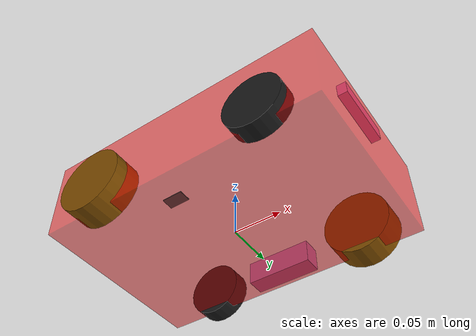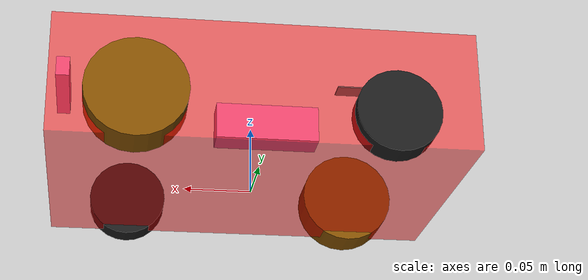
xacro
<?xml version="1.0"?>

<robot name="wombot" xmlns:xacro="http://ros.org/wiki/xacro">

  <xacro:arg name="robot_namespace" default="/" />

  <!-- Included URDF/XACRO Files -->
  <xacro:include filename="$(find perception_playground)/urdf/wheel.urdf.xacro" />
  <xacro:include filename="$(find perception_playground)/urdf/camera.urdf.xacro" />

  <material name="orange">
					<color rgba="0.5 0.3 0.0 1"/>
	</material>

  <material name="black">
					<color rgba="0.1 0.1 0.1 1"/>
	</material>

  <xacro:property name="M_PI" value="3.14159"/>

  <!-- Base Size -->
  <!-- TODO: Insert real values -->
  <xacro:property name="base_x_size" value="0.300" />
  <xacro:property name="base_y_size" value="0.200" />
  <xacro:property name="base_z_size" value="0.0889" />
  <xacro:property name="wall_thickness" value="0.002" />

  <!-- IMU -->
  <xacro:property name="imu_x_offset"	value="0.08" />

  <!-- Wheel Mounting Positions -->
  <!-- TODO: Insert real values -->
  <xacro:property name="wheelbase"		value="0.2159" />
  <xacro:property name="track"			value="0.196825" />
  <xacro:property name="caster_track"			value="0.196825" />
  <xacro:property name="ground_clearance"	value="0.00635" />
  <xacro:property name="front_axle_x_offset"	value="0.09" />
    <xacro:property name="rear_axle_x_offset"	value="-0.09" />

  <!-- Wheel Properties -->
  <xacro:property name="drive_wheel_length" value="0.03" />
  <xacro:property name="drive_wheel_radius" value="0.036" />
  <xacro:property name="caster_wheel_length" value="0.02" />
  <xacro:property name="caster_wheel_radius" value="0.03" />

  <!-- Camera Properties -->
  <xacro:property name="rs_camera_thickness" value="0.02" />
  <xacro:property name="rs_camera_width" value="0.07" />
  <xacro:property name="rs_camera_height" value="0.025" />
  <xacro:property name="rs_camera_x_offset" value="0.00" />
  <xacro:property name="rs_camera_y_offset" value="${base_y_size/2 - wall_thickness- rs_camera_thickness/2}" />
  <xacro:property name="rs_camera_z_offset" value="${wall_thickness + rs_camera_height/2}" />

  <!-- Camera Properties -->
  <xacro:property name="usb_camera_thickness" value="0.01" />
  <xacro:property name="usb_camera_width" value="0.07" />
  <xacro:property name="usb_camera_height" value="0.015" />
  <xacro:property name="usb_camera_x_offset" value="${base_x_size/2 - wall_thickness - usb_camera_thickness/2}" />
  <xacro:property name="usb_camera_y_offset" value="${base_y_size/2 - usb_camera_thickness}" />
  <xacro:property name="usb_camera_z_offset" value="${base_z_size - wall_thickness - usb_camera_height/2}" />

  <!-- Base link is the center of the robot's bottom surface -->
  <link name="base_link">
    <visual>
      <!-- This defines where the center of the visual element should be, relative to its origin.  -->
      <origin xyz="0 0 ${base_z_size/2}" rpy="0 0 0" />
      <geometry>
        <box size="${ base_x_size } ${base_y_size} ${base_z_size}"/>
        <!-- This is where the true mesh files will be invoked, when ready. -->
      </geometry>
      <material name="color1">
        <color rgba="1 0 0 .5"/>
      </material>
    </visual>
    <collision>
      <origin xyz="0 0 ${base_z_size/2}" rpy="0 0 0" />
      <geometry>
        <box size="${ base_x_size + 0.01 } ${base_y_size + 0.01} ${base_z_size + 0.01}"/>
      </geometry>
    </collision>
  </link>

  <!-- Base footprint is on the ground under the robot -->
  <link name="base_footprint"/>

  <joint name="base_footprint_joint" type="fixed">
    <origin xyz="0 0 ${-ground_clearance}" rpy="0 0 0" />
    <parent link="base_link" />
    <child link="base_footprint" />
  </joint>

  <link name="floor"/>

  <joint name="floor_joint" type="fixed">
  <!-- intrinsic meaning it rotates about whatever the nex axes direction is -->
    <origin xyz="0 0 -0.02085" rpy="0 0 0" />
    <parent link="left_camera_link" />
    <child link="floor" />
  </joint>

  <!-- Inertial link stores the robot's inertial information -->
  <link name="inertial_link">
    <inertial>
      <mass value="46.034" />
      <origin xyz="-0.00065 -0.085 0.062" />
      <inertia ixx="0.6022" ixy="-0.02364" ixz="-0.1197" iyy="1.7386" iyz="-0.001544" izz="2.0296" />
    </inertial>
  </link>

  <joint name="inertial_joint" type="fixed">
    <origin xyz="0 0 0" rpy="0 0 0" />
    <parent link="base_link" />
    <child link="inertial_link" />
  </joint>

  <!-- IMU Link is the standard mounting position for the navigation board.-->
  <!-- TODO: Put in real imu position -->
  <link name="alt_imu_10_link">
    <inertial>
      <mass value="2" />
      <origin xyz="0 0 0" />
      <inertia ixx="0.0" ixy="0" ixz="0" iyy="0" iyz="0" izz="0" />
    </inertial>
    <visual>
      <geometry>
        <box size="0.025 0.015 0.001"/>
      </geometry>
      <material name="color2">
        <color rgba="0 0.5 0.5 1"/>
      </material>
		</visual>
  </link>

  <joint name="alt_imu_10_joint" type="fixed">
    <origin xyz="${-imu_x_offset} 0 ${base_z_size - wall_thickness}" rpy="0 0 0" />
    <parent link="base_link" />
    <child link="alt_imu_10_link" />
  </joint>

  <!-- Drive Wheels -->
  <xacro:wombot_wheel wheel_prefix="left_drive" wheel_radius="${drive_wheel_radius}" wheel_length="${drive_wheel_length}" color="orange">
    <origin xyz="${front_axle_x_offset} ${track/2} ${-ground_clearance + drive_wheel_radius}" rpy="0 0 0" />
  </xacro:wombot_wheel>

  <xacro:wombot_wheel wheel_prefix="right_drive" wheel_radius="${drive_wheel_radius}" wheel_length="${drive_wheel_length}" color="orange">
    <!-- this is for the joint tag inside the included .xml -->
    <origin xyz="${rear_axle_x_offset} ${-track/2} ${-ground_clearance + drive_wheel_radius}" rpy="0 0 0" />
  </xacro:wombot_wheel>

  <!-- Caster Wheels -->
  <xacro:wombot_wheel wheel_prefix="left_caster" wheel_radius="${caster_wheel_radius}" wheel_length="${caster_wheel_length}" color="black">
    <origin xyz="${rear_axle_x_offset} ${caster_track/2} ${-ground_clearance + caster_wheel_radius}" rpy="0 0 0" />
  </xacro:wombot_wheel>

  <xacro:wombot_wheel wheel_prefix="right_caster" wheel_radius="${caster_wheel_radius}" wheel_length="${caster_wheel_length}" color="black">
    <origin xyz="${front_axle_x_offset} ${-caster_track/2} ${-ground_clearance + caster_wheel_radius}" rpy="0 0 0" />
  </xacro:wombot_wheel>

  <!-- Cameras -->
  <xacro:wombot_camera camera_prefix="left_camera" camera_thickness="${rs_camera_thickness}" camera_width="${rs_camera_width}" camera_height="${rs_camera_height}">
    <origin xyz="${-rs_camera_x_offset} ${rs_camera_y_offset} ${rs_camera_z_offset}" rpy="0 0 ${M_PI/2}" />
  </xacro:wombot_camera>

  <xacro:wombot_camera camera_prefix="front_camera" camera_thickness="${usb_camera_thickness}" camera_width="${usb_camera_width}" camera_height="${usb_camera_height}">
    <origin xyz="${usb_camera_x_offset} 0 ${usb_camera_z_offset}" rpy="0 0 0" />
  </xacro:wombot_camera>

</robot>

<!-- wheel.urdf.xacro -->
<robot xmlns:xacro="http://ros.org/wiki/xacro" name="wombot_wheel">

	<xacro:macro name="wombot_wheel" params="wheel_prefix wheel_radius wheel_length color *joint_pose">
		<link name="${wheel_prefix}_wheel_link">
			<inertial>
				<mass value="0.01" />
				<origin xyz="0 0 0" />
				<inertia  ixx="0.02467" ixy="0" ixz="0" iyy="0.04411" iyz="0" izz="0.02467" />
			</inertial>
			<visual>
				<origin xyz="0 0 0" rpy="${M_PI/2} 0 0" />
				<geometry>
					<cylinder length="${wheel_length}" radius="${wheel_radius}" />
				</geometry>
				<material name="${color}"/>
			</visual>
			<collision>
				<origin xyz="0 0 0" rpy="${M_PI/2} 0 0" />
				<geometry>
					<cylinder length="${wheel_length}" radius="${wheel_radius}" />
				</geometry>
			</collision>
		</link>

		<joint name="${wheel_prefix}_wheel_joint" type="continuous">
			<parent link="base_link"/>
			<child link="${wheel_prefix}_wheel_link"/>
			<xacro:insert_block name="joint_pose"/>
			<axis xyz="0 1 0" rpy="0 0 0" />
		</joint>

	</xacro:macro>
</robot>

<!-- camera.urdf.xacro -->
<robot xmlns:xacro="http://ros.org/wiki/xacro" name="wombot_camera">

	<xacro:macro name="wombot_camera" params="camera_prefix camera_thickness camera_width camera_height *joint_pose">
		<link name="${camera_prefix}_link">
			<visual>
			<!-- this origin xyz and rpy gets overwritten from values passed in from wombot.urdf.xacro -->
				<origin xyz="0 0 0" rpy="0 0 0" />
				<geometry>
                    <box size="${camera_thickness} ${camera_width} ${camera_height}"/>
				</geometry>
				<material name="color4">
					<color rgba="0.85 0.55 0.85 1"/>
				</material>
			</visual>
		</link>

		<joint name="${camera_prefix}_joint" type="fixed">
			<parent link="base_link"/>
			<child link="${camera_prefix}_link"/>
			<xacro:insert_block name="joint_pose"/>
			<axis xyz="0 0 0" rpy="0 0 0" />
		</joint>

	</xacro:macro>
</robot>
